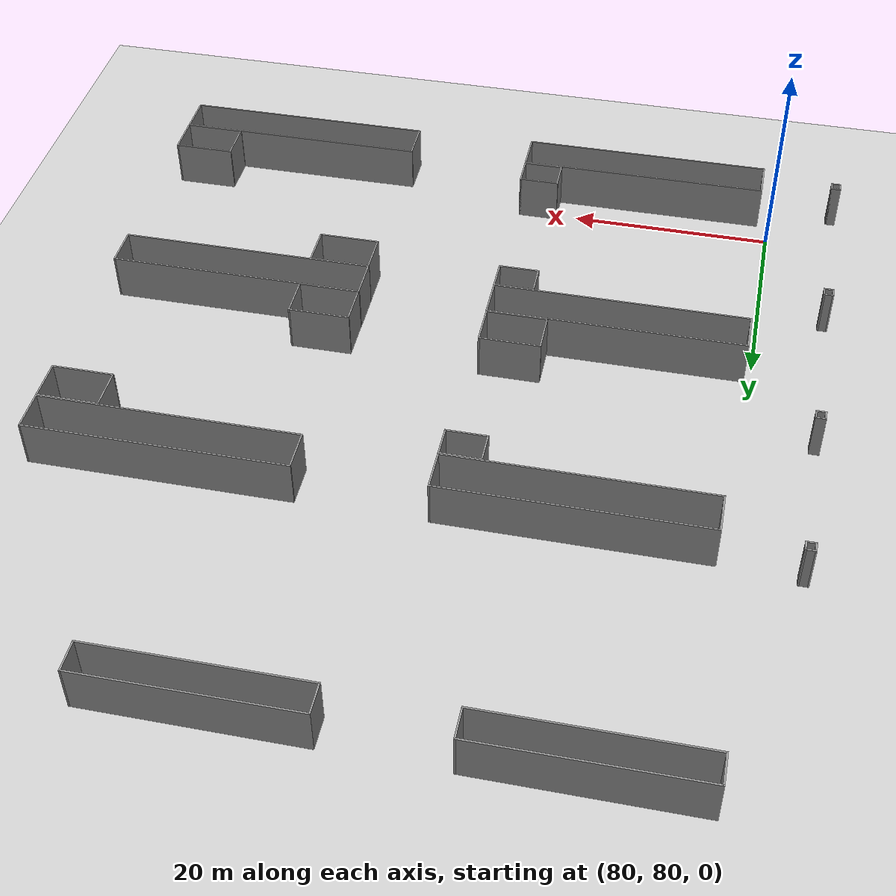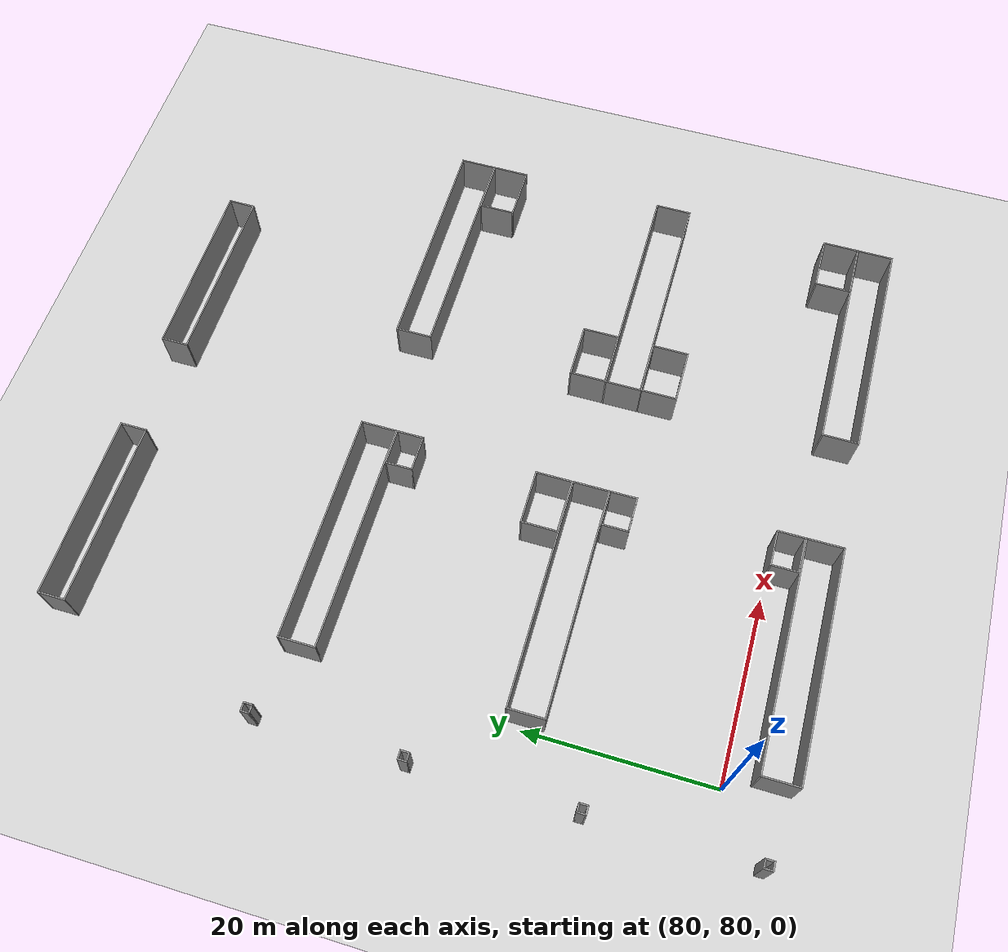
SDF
<sdf version="1.6">
 <world name="default">
  <model name="ground_plane">
   <static>1</static>
   <link name="link">
    <collision name="collision">
     <geometry><plane><normal>0 0 1</normal><size>320 320</size></plane></geometry>
     <surface>
      <contact><collide_bitmask>65535</collide_bitmask></contact>
      <friction><ode><mu>100</mu><mu2>50</mu2></ode></friction>
     </surface>
    </collision>
    <visual name="visual">
     <cast_shadows>0</cast_shadows>
     <geometry><plane><normal>0 0 1</normal><size>320 320</size></plane></geometry>
     <material>
      <script><uri>file://media/materials/scripts/gazebo.material</uri><name>Gazebo/Grey</name></script>
     </material>
    </visual>
   </link>
  </model>
  <model name="base4x25">
   <pose>130.671 123.217 0 0 -0 0</pose>
   <link name="Wall_11">
    <collision name="Wall_11_Collision">
     <geometry><box><size>4 0.15 6.555</size></box></geometry>
     <pose>0 0 1.25 0 -0 0</pose>
    </collision>
    <visual name="Wall_11_Visual">
     <pose>0 0 1.25 0 -0 0</pose>
     <geometry><box><size>4 0.15 6.555</size></box></geometry>
     <material>
      <script><uri>file://media/materials/scripts/gazebo.material</uri><name>Gazebo/Grey</name></script>
      <ambient>1 1 1 1</ambient>
     </material>
     <meta><layer>0</layer></meta>
    </visual>
    <pose>-12.425 0 0 0 -0 -1.5708</pose>
   </link>
   <link name="Wall_12">
    <collision name="Wall_12_Collision">
     <geometry><box><size>25 0.15 6.555</size></box></geometry>
     <pose>0 0 1.25 0 -0 0</pose>
    </collision>
    <visual name="Wall_12_Visual">
     <pose>0 0 1.25 0 -0 0</pose>
     <geometry><box><size>25 0.15 6.555</size></box></geometry>
     <material>
      <script><uri>file://media/materials/scripts/gazebo.material</uri><name>Gazebo/Grey</name></script>
      <ambient>1 1 1 1</ambient>
     </material>
     <meta><layer>0</layer></meta>
    </visual>
    <pose>0 -1.925 0 0 -0 0</pose>
   </link>
   <link name="Wall_13">
    <collision name="Wall_13_Collision">
     <geometry><box><size>4 0.15 6.555</size></box></geometry>
     <pose>0 0 1.25 0 -0 0</pose>
    </collision>
    <visual name="Wall_13_Visual">
     <pose>0 0 1.25 0 -0 0</pose>
     <geometry><box><size>4 0.15 6.555</size></box></geometry>
     <material>
      <script><uri>file://media/materials/scripts/gazebo.material</uri><name>Gazebo/Grey</name></script>
      <ambient>1 1 1 1</ambient>
     </material>
     <meta><layer>0</layer></meta>
    </visual>
    <pose>12.425 0 0 0 -0 1.5708</pose>
   </link>
   <link name="Wall_14">
    <collision name="Wall_14_Collision">
     <geometry><box><size>25 0.15 6.555</size></box></geometry>
     <pose>0 0 1.25 0 -0 0</pose>
    </collision>
    <visual name="Wall_14_Visual">
     <pose>0 0 1.25 0 -0 0</pose>
     <geometry><box><size>25 0.15 6.555</size></box></geometry>
     <material>
      <script><uri>file://media/materials/scripts/gazebo.material</uri><name>Gazebo/Grey</name></script>
      <ambient>1 1 1 1</ambient>
     </material>
     <meta><layer>0</layer></meta>
    </visual>
    <pose>0 1.925 0 0 -0 3.14159</pose>
   </link>
   <static>1</static>
  </model>
  <model name="base4x25_0">
   <pose>93.5859 123.083 0 0 -0 0</pose>
   <link name="Wall_11">
    <collision name="Wall_11_Collision">
     <geometry><box><size>4 0.15 6.555</size></box></geometry>
     <pose>0 0 1.25 0 -0 0</pose>
    </collision>
    <visual name="Wall_11_Visual">
     <pose>0 0 1.25 0 -0 0</pose>
     <geometry><box><size>4 0.15 6.555</size></box></geometry>
     <material>
      <script><uri>file://media/materials/scripts/gazebo.material</uri><name>Gazebo/Grey</name></script>
      <ambient>1 1 1 1</ambient>
     </material>
     <meta><layer>0</layer></meta>
    </visual>
    <pose>-12.425 0 0 0 -0 -1.5708</pose>
   </link>
   <link name="Wall_12">
    <collision name="Wall_12_Collision">
     <geometry><box><size>25 0.15 6.555</size></box></geometry>
     <pose>0 0 1.25 0 -0 0</pose>
    </collision>
    <visual name="Wall_12_Visual">
     <pose>0 0 1.25 0 -0 0</pose>
     <geometry><box><size>25 0.15 6.555</size></box></geometry>
     <material>
      <script><uri>file://media/materials/scripts/gazebo.material</uri><name>Gazebo/Grey</name></script>
      <ambient>1 1 1 1</ambient>
     </material>
     <meta><layer>0</layer></meta>
    </visual>
    <pose>0 -1.925 0 0 -0 0</pose>
   </link>
   <link name="Wall_13">
    <collision name="Wall_13_Collision">
     <geometry><box><size>4 0.15 6.555</size></box></geometry>
     <pose>0 0 1.25 0 -0 0</pose>
    </collision>
    <visual name="Wall_13_Visual">
     <pose>0 0 1.25 0 -0 0</pose>
     <geometry><box><size>4 0.15 6.555</size></box></geometry>
     <material>
      <script><uri>file://media/materials/scripts/gazebo.material</uri><name>Gazebo/Grey</name></script>
      <ambient>1 1 1 1</ambient>
     </material>
     <meta><layer>0</layer></meta>
    </visual>
    <pose>12.425 0 0 0 -0 1.5708</pose>
   </link>
   <link name="Wall_14">
    <collision name="Wall_14_Collision">
     <geometry><box><size>25 0.15 6.555</size></box></geometry>
     <pose>0 0 1.25 0 -0 0</pose>
    </collision>
    <visual name="Wall_14_Visual">
     <pose>0 0 1.25 0 -0 0</pose>
     <geometry><box><size>25 0.15 6.555</size></box></geometry>
     <material>
      <script><uri>file://media/materials/scripts/gazebo.material</uri><name>Gazebo/Grey</name></script>
      <ambient>1 1 1 1</ambient>
     </material>
     <meta><layer>0</layer></meta>
    </visual>
    <pose>0 1.925 0 0 -0 3.14159</pose>
   </link>
   <static>1</static>
  </model>
  <model name="base4x25_1">
   <pose>130.605 99.4308 0 0 -0 0</pose>
   <link name="Wall_11">
    <collision name="Wall_11_Collision">
     <geometry><box><size>4 0.15 6.555</size></box></geometry>
     <pose>0 0 1.25 0 -0 0</pose>
    </collision>
    <visual name="Wall_11_Visual">
     <pose>0 0 1.25 0 -0 0</pose>
     <geometry><box><size>4 0.15 6.555</size></box></geometry>
     <material>
      <script><uri>file://media/materials/scripts/gazebo.material</uri><name>Gazebo/Grey</name></script>
      <ambient>1 1 1 1</ambient>
     </material>
     <meta><layer>0</layer></meta>
    </visual>
    <pose>-12.425 0 0 0 -0 -1.5708</pose>
   </link>
   <link name="Wall_12">
    <collision name="Wall_12_Collision">
     <geometry><box><size>25 0.15 6.555</size></box></geometry>
     <pose>0 0 1.25 0 -0 0</pose>
    </collision>
    <visual name="Wall_12_Visual">
     <pose>0 0 1.25 0 -0 0</pose>
     <geometry><box><size>25 0.15 6.555</size></box></geometry>
     <material>
      <script><uri>file://media/materials/scripts/gazebo.material</uri><name>Gazebo/Grey</name></script>
      <ambient>1 1 1 1</ambient>
     </material>
     <meta><layer>0</layer></meta>
    </visual>
    <pose>0 -1.925 0 0 -0 0</pose>
   </link>
   <link name="Wall_13">
    <collision name="Wall_13_Collision">
     <geometry><box><size>4 0.15 6.555</size></box></geometry>
     <pose>0 0 1.25 0 -0 0</pose>
    </collision>
    <visual name="Wall_13_Visual">
     <pose>0 0 1.25 0 -0 0</pose>
     <geometry><box><size>4 0.15 6.555</size></box></geometry>
     <material>
      <script><uri>file://media/materials/scripts/gazebo.material</uri><name>Gazebo/Grey</name></script>
      <ambient>1 1 1 1</ambient>
     </material>
     <meta><layer>0</layer></meta>
    </visual>
    <pose>12.425 0 0 0 -0 1.5708</pose>
   </link>
   <link name="Wall_14">
    <collision name="Wall_14_Collision">
     <geometry><box><size>25 0.15 6.555</size></box></geometry>
     <pose>0 0 1.25 0 -0 0</pose>
    </collision>
    <visual name="Wall_14_Visual">
     <pose>0 0 1.25 0 -0 0</pose>
     <geometry><box><size>25 0.15 6.555</size></box></geometry>
     <material>
      <script><uri>file://media/materials/scripts/gazebo.material</uri><name>Gazebo/Grey</name></script>
      <ambient>1 1 1 1</ambient>
     </material>
     <meta><layer>0</layer></meta>
    </visual>
    <pose>0 1.925 0 0 -0 3.14159</pose>
   </link>
   <static>1</static>
  </model>
  <model name="base4x25_2">
   <pose>93.095 99.7335 0 0 -0 0</pose>
   <link name="Wall_11">
    <collision name="Wall_11_Collision">
     <geometry><box><size>4 0.15 6.555</size></box></geometry>
     <pose>0 0 1.25 0 -0 0</pose>
    </collision>
    <visual name="Wall_11_Visual">
     <pose>0 0 1.25 0 -0 0</pose>
     <geometry><box><size>4 0.15 6.555</size></box></geometry>
     <material>
      <script><uri>file://media/materials/scripts/gazebo.material</uri><name>Gazebo/Grey</name></script>
      <ambient>1 1 1 1</ambient>
     </material>
     <meta><layer>0</layer></meta>
    </visual>
    <pose>-12.425 0 0 0 -0 -1.5708</pose>
   </link>
   <link name="Wall_12">
    <collision name="Wall_12_Collision">
     <geometry><box><size>25 0.15 6.555</size></box></geometry>
     <pose>0 0 1.25 0 -0 0</pose>
    </collision>
    <visual name="Wall_12_Visual">
     <pose>0 0 1.25 0 -0 0</pose>
     <geometry><box><size>25 0.15 6.555</size></box></geometry>
     <material>
      <script><uri>file://media/materials/scripts/gazebo.material</uri><name>Gazebo/Grey</name></script>
      <ambient>1 1 1 1</ambient>
     </material>
     <meta><layer>0</layer></meta>
    </visual>
    <pose>0 -1.925 0 0 -0 0</pose>
   </link>
   <link name="Wall_13">
    <collision name="Wall_13_Collision">
     <geometry><box><size>4 0.15 6.555</size></box></geometry>
     <pose>0 0 1.25 0 -0 0</pose>
    </collision>
    <visual name="Wall_13_Visual">
     <pose>0 0 1.25 0 -0 0</pose>
     <geometry><box><size>4 0.15 6.555</size></box></geometry>
     <material>
      <script><uri>file://media/materials/scripts/gazebo.material</uri><name>Gazebo/Grey</name></script>
      <ambient>1 1 1 1</ambient>
     </material>
     <meta><layer>0</layer></meta>
    </visual>
    <pose>12.425 0 0 0 -0 1.5708</pose>
   </link>
   <link name="Wall_14">
    <collision name="Wall_14_Collision">
     <geometry><box><size>25 0.15 6.555</size></box></geometry>
     <pose>0 0 1.25 0 -0 0</pose>
    </collision>
    <visual name="Wall_14_Visual">
     <pose>0 0 1.25 0 -0 0</pose>
     <geometry><box><size>25 0.15 6.555</size></box></geometry>
     <material>
      <script><uri>file://media/materials/scripts/gazebo.material</uri><name>Gazebo/Grey</name></script>
      <ambient>1 1 1 1</ambient>
     </material>
     <meta><layer>0</layer></meta>
    </visual>
    <pose>0 1.925 0 0 -0 3.14159</pose>
   </link>
   <static>1</static>
  </model>
  <model name="base4x25_3">
   <pose>130.754 75.8809 0 0 -0 0</pose>
   <link name="Wall_11">
    <collision name="Wall_11_Collision">
     <geometry><box><size>4 0.15 6.555</size></box></geometry>
     <pose>0 0 1.25 0 -0 0</pose>
    </collision>
    <visual name="Wall_11_Visual">
     <pose>0 0 1.25 0 -0 0</pose>
     <geometry><box><size>4 0.15 6.555</size></box></geometry>
     <material>
      <script><uri>file://media/materials/scripts/gazebo.material</uri><name>Gazebo/Grey</name></script>
      <ambient>1 1 1 1</ambient>
     </material>
     <meta><layer>0</layer></meta>
    </visual>
    <pose>-12.425 0 0 0 -0 -1.5708</pose>
   </link>
   <link name="Wall_12">
    <collision name="Wall_12_Collision">
     <geometry><box><size>25 0.15 6.555</size></box></geometry>
     <pose>0 0 1.25 0 -0 0</pose>
    </collision>
    <visual name="Wall_12_Visual">
     <pose>0 0 1.25 0 -0 0</pose>
     <geometry><box><size>25 0.15 6.555</size></box></geometry>
     <material>
      <script><uri>file://media/materials/scripts/gazebo.material</uri><name>Gazebo/Grey</name></script>
      <ambient>1 1 1 1</ambient>
     </material>
     <meta><layer>0</layer></meta>
    </visual>
    <pose>0 -1.925 0 0 -0 0</pose>
   </link>
   <link name="Wall_13">
    <collision name="Wall_13_Collision">
     <geometry><box><size>4 0.15 6.555</size></box></geometry>
     <pose>0 0 1.25 0 -0 0</pose>
    </collision>
    <visual name="Wall_13_Visual">
     <pose>0 0 1.25 0 -0 0</pose>
     <geometry><box><size>4 0.15 6.555</size></box></geometry>
     <material>
      <script><uri>file://media/materials/scripts/gazebo.material</uri><name>Gazebo/Grey</name></script>
      <ambient>1 1 1 1</ambient>
     </material>
     <meta><layer>0</layer></meta>
    </visual>
    <pose>12.425 0 0 0 -0 1.5708</pose>
   </link>
   <link name="Wall_14">
    <collision name="Wall_14_Collision">
     <geometry><box><size>25 0.15 6.555</size></box></geometry>
     <pose>0 0 1.25 0 -0 0</pose>
    </collision>
    <visual name="Wall_14_Visual">
     <pose>0 0 1.25 0 -0 0</pose>
     <geometry><box><size>25 0.15 6.555</size></box></geometry>
     <material>
      <script><uri>file://media/materials/scripts/gazebo.material</uri><name>Gazebo/Grey</name></script>
      <ambient>1 1 1 1</ambient>
     </material>
     <meta><layer>0</layer></meta>
    </visual>
    <pose>0 1.925 0 0 -0 3.14159</pose>
   </link>
   <static>1</static>
  </model>
  <model name="base4x25_10">
   <pose>93.6086 75.3811 0 0 -0 0</pose>
   <link name="Wall_11">
    <collision name="Wall_11_Collision">
     <geometry><box><size>4 0.15 6.555</size></box></geometry>
     <pose>0 0 1.25 0 -0 0</pose>
    </collision>
    <visual name="Wall_11_Visual">
     <pose>0 0 1.25 0 -0 0</pose>
     <geometry><box><size>4 0.15 6.555</size></box></geometry>
     <material>
      <script><uri>file://media/materials/scripts/gazebo.material</uri><name>Gazebo/Grey</name></script>
      <ambient>1 1 1 1</ambient>
     </material>
     <meta><layer>0</layer></meta>
    </visual>
    <pose>-12.425 0 0 0 -0 -1.5708</pose>
   </link>
   <link name="Wall_12">
    <collision name="Wall_12_Collision">
     <geometry><box><size>25 0.15 6.555</size></box></geometry>
     <pose>0 0 1.25 0 -0 0</pose>
    </collision>
    <visual name="Wall_12_Visual">
     <pose>0 0 1.25 0 -0 0</pose>
     <geometry><box><size>25 0.15 6.555</size></box></geometry>
     <material>
      <script><uri>file://media/materials/scripts/gazebo.material</uri><name>Gazebo/Grey</name></script>
      <ambient>1 1 1 1</ambient>
     </material>
     <meta><layer>0</layer></meta>
    </visual>
    <pose>0 -1.925 0 0 -0 0</pose>
   </link>
   <link name="Wall_13">
    <collision name="Wall_13_Collision">
     <geometry><box><size>4 0.15 6.555</size></box></geometry>
     <pose>0 0 1.25 0 -0 0</pose>
    </collision>
    <visual name="Wall_13_Visual">
     <pose>0 0 1.25 0 -0 0</pose>
     <geometry><box><size>4 0.15 6.555</size></box></geometry>
     <material>
      <script><uri>file://media/materials/scripts/gazebo.material</uri><name>Gazebo/Grey</name></script>
      <ambient>1 1 1 1</ambient>
     </material>
     <meta><layer>0</layer></meta>
    </visual>
    <pose>12.425 0 0 0 -0 1.5708</pose>
   </link>
   <link name="Wall_14">
    <collision name="Wall_14_Collision">
     <geometry><box><size>25 0.15 6.555</size></box></geometry>
     <pose>0 0 1.25 0 -0 0</pose>
    </collision>
    <visual name="Wall_14_Visual">
     <pose>0 0 1.25 0 -0 0</pose>
     <geometry><box><size>25 0.15 6.555</size></box></geometry>
     <material>
      <script><uri>file://media/materials/scripts/gazebo.material</uri><name>Gazebo/Grey</name></script>
      <ambient>1 1 1 1</ambient>
     </material>
     <meta><layer>0</layer></meta>
    </visual>
    <pose>0 1.925 0 0 -0 3.14159</pose>
   </link>
   <static>1</static>
  </model>
  <model name="box_1mx1m_clone">
   <pose>73.7138 125.314 0 0 -0 0</pose>
   <link name="Wall_10">
    <collision name="Wall_10_Collision">
     <geometry><box><size>1 0.15 6.555</size></box></geometry>
     <pose>0 0 1.25 0 -0 0</pose>
    </collision>
    <visual name="Wall_10_Visual">
     <pose>0 0 1.25 0 -0 0</pose>
     <geometry><box><size>1 0.15 6.555</size></box></geometry>
     <material>
      <script><uri>file://media/materials/scripts/gazebo.material</uri><name>Gazebo/Grey</name></script>
      <ambient>1 1 1 1</ambient>
     </material>
     <meta><layer>0</layer></meta>
    </visual>
    <pose>-0.425 0 0 0 -0 -1.5708</pose>
   </link>
   <link name="Wall_11">
    <collision name="Wall_11_Collision">
     <geometry><box><size>1 0.15 6.555</size></box></geometry>
     <pose>0 0 1.25 0 -0 0</pose>
    </collision>
    <visual name="Wall_11_Visual">
     <pose>0 0 1.25 0 -0 0</pose>
     <geometry><box><size>1 0.15 6.555</size></box></geometry>
     <material>
      <script><uri>file://media/materials/scripts/gazebo.material</uri><name>Gazebo/Grey</name></script>
      <ambient>1 1 1 1</ambient>
     </material>
     <meta><layer>0</layer></meta>
    </visual>
    <pose>0 -0.425 0 0 -0 0</pose>
   </link>
   <link name="Wall_12">
    <collision name="Wall_12_Collision">
     <geometry><box><size>1 0.15 6.555</size></box></geometry>
     <pose>0 0 1.25 0 -0 0</pose>
    </collision>
    <visual name="Wall_12_Visual">
     <pose>0 0 1.25 0 -0 0</pose>
     <geometry><box><size>1 0.15 6.555</size></box></geometry>
     <material>
      <script><uri>file://media/materials/scripts/gazebo.material</uri><name>Gazebo/Grey</name></script>
      <ambient>1 1 1 1</ambient>
     </material>
     <meta><layer>0</layer></meta>
    </visual>
    <pose>0.425 0 0 0 -0 1.5708</pose>
   </link>
   <link name="Wall_13">
    <collision name="Wall_13_Collision">
     <geometry><box><size>1 0.15 6.555</size></box></geometry>
     <pose>0 0 1.25 0 -0 0</pose>
    </collision>
    <visual name="Wall_13_Visual">
     <pose>0 0 1.25 0 -0 0</pose>
     <geometry><box><size>1 0.15 6.555</size></box></geometry>
     <material>
      <script><uri>file://media/materials/scripts/gazebo.material</uri><name>Gazebo/Grey</name></script>
      <ambient>1 1 1 1</ambient>
     </material>
     <meta><layer>0</layer></meta>
    </visual>
    <pose>0 0.425 0 0 -0 3.14159</pose>
   </link>
   <static>1</static>
  </model>
  <model name="box_1mx1m_clone_0">
   <pose>73.5984 109.584 0 0 -0 0</pose>
   <link name="Wall_10">
    <collision name="Wall_10_Collision">
     <geometry><box><size>1 0.15 6.555</size></box></geometry>
     <pose>0 0 1.25 0 -0 0</pose>
    </collision>
    <visual name="Wall_10_Visual">
     <pose>0 0 1.25 0 -0 0</pose>
     <geometry><box><size>1 0.15 6.555</size></box></geometry>
     <material>
      <script><uri>file://media/materials/scripts/gazebo.material</uri><name>Gazebo/Grey</name></script>
      <ambient>1 1 1 1</ambient>
     </material>
     <meta><layer>0</layer></meta>
    </visual>
    <pose>-0.425 0 0 0 -0 -1.5708</pose>
   </link>
   <link name="Wall_11">
    <collision name="Wall_11_Collision">
     <geometry><box><size>1 0.15 6.555</size></box></geometry>
     <pose>0 0 1.25 0 -0 0</pose>
    </collision>
    <visual name="Wall_11_Visual">
     <pose>0 0 1.25 0 -0 0</pose>
     <geometry><box><size>1 0.15 6.555</size></box></geometry>
     <material>
      <script><uri>file://media/materials/scripts/gazebo.material</uri><name>Gazebo/Grey</name></script>
      <ambient>1 1 1 1</ambient>
     </material>
     <meta><layer>0</layer></meta>
    </visual>
    <pose>0 -0.425 0 0 -0 0</pose>
   </link>
   <link name="Wall_12">
    <collision name="Wall_12_Collision">
     <geometry><box><size>1 0.15 6.555</size></box></geometry>
     <pose>0 0 1.25 0 -0 0</pose>
    </collision>
    <visual name="Wall_12_Visual">
     <pose>0 0 1.25 0 -0 0</pose>
     <geometry><box><size>1 0.15 6.555</size></box></geometry>
     <material>
      <script><uri>file://media/materials/scripts/gazebo.material</uri><name>Gazebo/Grey</name></script>
      <ambient>1 1 1 1</ambient>
     </material>
     <meta><layer>0</layer></meta>
    </visual>
    <pose>0.425 0 0 0 -0 1.5708</pose>
   </link>
   <link name="Wall_13">
    <collision name="Wall_13_Collision">
     <geometry><box><size>1 0.15 6.555</size></box></geometry>
     <pose>0 0 1.25 0 -0 0</pose>
    </collision>
    <visual name="Wall_13_Visual">
     <pose>0 0 1.25 0 -0 0</pose>
     <geometry><box><size>1 0.15 6.555</size></box></geometry>
     <material>
      <script><uri>file://media/materials/scripts/gazebo.material</uri><name>Gazebo/Grey</name></script>
      <ambient>1 1 1 1</ambient>
     </material>
     <meta><layer>0</layer></meta>
    </visual>
    <pose>0 0.425 0 0 -0 3.14159</pose>
   </link>
   <static>1</static>
  </model>
  <model name="box_1mx1m_clone_1">
   <pose>73.6369 92.3532 0 0 -0 0</pose>
   <link name="Wall_10">
    <collision name="Wall_10_Collision">
     <geometry><box><size>1 0.15 6.555</size></box></geometry>
     <pose>0 0 1.25 0 -0 0</pose>
    </collision>
    <visual name="Wall_10_Visual">
     <pose>0 0 1.25 0 -0 0</pose>
     <geometry><box><size>1 0.15 6.555</size></box></geometry>
     <material>
      <script><uri>file://media/materials/scripts/gazebo.material</uri><name>Gazebo/Grey</name></script>
      <ambient>1 1 1 1</ambient>
     </material>
     <meta><layer>0</layer></meta>
    </visual>
    <pose>-0.425 0 0 0 -0 -1.5708</pose>
   </link>
   <link name="Wall_11">
    <collision name="Wall_11_Collision">
     <geometry><box><size>1 0.15 6.555</size></box></geometry>
     <pose>0 0 1.25 0 -0 0</pose>
    </collision>
    <visual name="Wall_11_Visual">
     <pose>0 0 1.25 0 -0 0</pose>
     <geometry><box><size>1 0.15 6.555</size></box></geometry>
     <material>
      <script><uri>file://media/materials/scripts/gazebo.material</uri><name>Gazebo/Grey</name></script>
      <ambient>1 1 1 1</ambient>
     </material>
     <meta><layer>0</layer></meta>
    </visual>
    <pose>0 -0.425 0 0 -0 0</pose>
   </link>
   <link name="Wall_12">
    <collision name="Wall_12_Collision">
     <geometry><box><size>1 0.15 6.555</size></box></geometry>
     <pose>0 0 1.25 0 -0 0</pose>
    </collision>
    <visual name="Wall_12_Visual">
     <pose>0 0 1.25 0 -0 0</pose>
     <geometry><box><size>1 0.15 6.555</size></box></geometry>
     <material>
      <script><uri>file://media/materials/scripts/gazebo.material</uri><name>Gazebo/Grey</name></script>
      <ambient>1 1 1 1</ambient>
     </material>
     <meta><layer>0</layer></meta>
    </visual>
    <pose>0.425 0 0 0 -0 1.5708</pose>
   </link>
   <link name="Wall_13">
    <collision name="Wall_13_Collision">
     <geometry><box><size>1 0.15 6.555</size></box></geometry>
     <pose>0 0 1.25 0 -0 0</pose>
    </collision>
    <visual name="Wall_13_Visual">
     <pose>0 0 1.25 0 -0 0</pose>
     <geometry><box><size>1 0.15 6.555</size></box></geometry>
     <material>
      <script><uri>file://media/materials/scripts/gazebo.material</uri><name>Gazebo/Grey</name></script>
      <ambient>1 1 1 1</ambient>
     </material>
     <meta><layer>0</layer></meta>
    </visual>
    <pose>0 0.425 0 0 -0 3.14159</pose>
   </link>
   <static>1</static>
  </model>
  <model name="box_1mx1m_clone_2">
   <pose>73.6078 75.0685 0 0 -0 0</pose>
   <link name="Wall_10">
    <collision name="Wall_10_Collision">
     <geometry><box><size>1 0.15 6.555</size></box></geometry>
     <pose>0 0 1.25 0 -0 0</pose>
    </collision>
    <visual name="Wall_10_Visual">
     <pose>0 0 1.25 0 -0 0</pose>
     <geometry><box><size>1 0.15 6.555</size></box></geometry>
     <material>
      <script><uri>file://media/materials/scripts/gazebo.material</uri><name>Gazebo/Grey</name></script>
      <ambient>1 1 1 1</ambient>
     </material>
     <meta><layer>0</layer></meta>
    </visual>
    <pose>-0.425 0 0 0 -0 -1.5708</pose>
   </link>
   <link name="Wall_11">
    <collision name="Wall_11_Collision">
     <geometry><box><size>1 0.15 6.555</size></box></geometry>
     <pose>0 0 1.25 0 -0 0</pose>
    </collision>
    <visual name="Wall_11_Visual">
     <pose>0 0 1.25 0 -0 0</pose>
     <geometry><box><size>1 0.15 6.555</size></box></geometry>
     <material>
      <script><uri>file://media/materials/scripts/gazebo.material</uri><name>Gazebo/Grey</name></script>
      <ambient>1 1 1 1</ambient>
     </material>
     <meta><layer>0</layer></meta>
    </visual>
    <pose>0 -0.425 0 0 -0 0</pose>
   </link>
   <link name="Wall_12">
    <collision name="Wall_12_Collision">
     <geometry><box><size>1 0.15 6.555</size></box></geometry>
     <pose>0 0 1.25 0 -0 0</pose>
    </collision>
    <visual name="Wall_12_Visual">
     <pose>0 0 1.25 0 -0 0</pose>
     <geometry><box><size>1 0.15 6.555</size></box></geometry>
     <material>
      <script><uri>file://media/materials/scripts/gazebo.material</uri><name>Gazebo/Grey</name></script>
      <ambient>1 1 1 1</ambient>
     </material>
     <meta><layer>0</layer></meta>
    </visual>
    <pose>0.425 0 0 0 -0 1.5708</pose>
   </link>
   <link name="Wall_13">
    <collision name="Wall_13_Collision">
     <geometry><box><size>1 0.15 6.555</size></box></geometry>
     <pose>0 0 1.25 0 -0 0</pose>
    </collision>
    <visual name="Wall_13_Visual">
     <pose>0 0 1.25 0 -0 0</pose>
     <geometry><box><size>1 0.15 6.555</size></box></geometry>
     <material>
      <script><uri>file://media/materials/scripts/gazebo.material</uri><name>Gazebo/Grey</name></script>
      <ambient>1 1 1 1</ambient>
     </material>
     <meta><layer>0</layer></meta>
    </visual>
    <pose>0 0.425 0 0 -0 3.14159</pose>
   </link>
   <static>1</static>
  </model>
  <model name="base4x6_13">
   <pose>140.18 119.242 0 0 -0 0</pose>
   <link name="Wall_23">
    <collision name="Wall_23_Collision">
     <geometry><box><size>4 0.15 6.555</size></box></geometry>
     <pose>0 0 1.25 0 -0 0</pose>
    </collision>
    <visual name="Wall_23_Visual">
     <pose>0 0 1.25 0 -0 0</pose>
     <geometry><box><size>4 0.15 6.555</size></box></geometry>
     <material>
      <script><uri>file://media/materials/scripts/gazebo.material</uri><name>Gazebo/Grey</name></script>
      <ambient>1 1 1 1</ambient>
     </material>
     <meta><layer>0</layer></meta>
    </visual>
    <pose>-2.925 0 0 0 -0 -1.5708</pose>
   </link>
   <link name="Wall_24">
    <collision name="Wall_24_Collision">
     <geometry><box><size>6 0.15 6.555</size></box></geometry>
     <pose>0 0 1.25 0 -0 0</pose>
    </collision>
    <visual name="Wall_24_Visual">
     <pose>0 0 1.25 0 -0 0</pose>
     <geometry><box><size>6 0.15 6.555</size></box></geometry>
     <material>
      <script><uri>file://media/materials/scripts/gazebo.material</uri><name>Gazebo/Grey</name></script>
      <ambient>1 1 1 1</ambient>
     </material>
     <meta><layer>0</layer></meta>
    </visual>
    <pose>-0 -1.925 0 0 -0 0</pose>
   </link>
   <link name="Wall_25">
    <collision name="Wall_25_Collision">
     <geometry><box><size>4 0.15 6.555</size></box></geometry>
     <pose>0 0 1.25 0 -0 0</pose>
    </collision>
    <visual name="Wall_25_Visual">
     <pose>0 0 1.25 0 -0 0</pose>
     <geometry><box><size>4 0.15 6.555</size></box></geometry>
     <material>
      <script><uri>file://media/materials/scripts/gazebo.material</uri><name>Gazebo/Grey</name></script>
      <ambient>1 1 1 1</ambient>
     </material>
     <meta><layer>0</layer></meta>
    </visual>
    <pose>2.925 0 0 0 -0 1.5708</pose>
   </link>
   <link name="Wall_26">
    <collision name="Wall_26_Collision">
     <geometry><box><size>6 0.15 6.555</size></box></geometry>
     <pose>0 0 1.25 0 -0 0</pose>
    </collision>
    <visual name="Wall_26_Visual">
     <pose>0 0 1.25 0 -0 0</pose>
     <geometry><box><size>6 0.15 6.555</size></box></geometry>
     <material>
      <script><uri>file://media/materials/scripts/gazebo.material</uri><name>Gazebo/Grey</name></script>
      <ambient>1 1 1 1</ambient>
     </material>
     <meta><layer>0</layer></meta>
    </visual>
    <pose>-0 1.925 0 0 -0 3.14159</pose>
   </link>
   <static>1</static>
  </model>
  <model name="base4x6_13_clone">
   <pose>121.121 95.4913 0 0 -0 0</pose>
   <link name="Wall_23">
    <collision name="Wall_23_Collision">
     <geometry><box><size>4 0.15 6.555</size></box></geometry>
     <pose>0 0 1.25 0 -0 0</pose>
    </collision>
    <visual name="Wall_23_Visual">
     <pose>0 0 1.25 0 -0 0</pose>
     <geometry><box><size>4 0.15 6.555</size></box></geometry>
     <material>
      <script><uri>file://media/materials/scripts/gazebo.material</uri><name>Gazebo/Grey</name></script>
      <ambient>1 1 1 1</ambient>
     </material>
     <meta><layer>0</layer></meta>
    </visual>
    <pose>-2.925 0 0 0 -0 -1.5708</pose>
   </link>
   <link name="Wall_24">
    <collision name="Wall_24_Collision">
     <geometry><box><size>6 0.15 6.555</size></box></geometry>
     <pose>0 0 1.25 0 -0 0</pose>
    </collision>
    <visual name="Wall_24_Visual">
     <pose>0 0 1.25 0 -0 0</pose>
     <geometry><box><size>6 0.15 6.555</size></box></geometry>
     <material>
      <script><uri>file://media/materials/scripts/gazebo.material</uri><name>Gazebo/Grey</name></script>
      <ambient>1 1 1 1</ambient>
     </material>
     <meta><layer>0</layer></meta>
    </visual>
    <pose>-0 -1.925 0 0 -0 0</pose>
   </link>
   <link name="Wall_25">
    <collision name="Wall_25_Collision">
     <geometry><box><size>4 0.15 6.555</size></box></geometry>
     <pose>0 0 1.25 0 -0 0</pose>
    </collision>
    <visual name="Wall_25_Visual">
     <pose>0 0 1.25 0 -0 0</pose>
     <geometry><box><size>4 0.15 6.555</size></box></geometry>
     <material>
      <script><uri>file://media/materials/scripts/gazebo.material</uri><name>Gazebo/Grey</name></script>
      <ambient>1 1 1 1</ambient>
     </material>
     <meta><layer>0</layer></meta>
    </visual>
    <pose>2.925 0 0 0 -0 1.5708</pose>
   </link>
   <link name="Wall_26">
    <collision name="Wall_26_Collision">
     <geometry><box><size>6 0.15 6.555</size></box></geometry>
     <pose>0 0 1.25 0 -0 0</pose>
    </collision>
    <visual name="Wall_26_Visual">
     <pose>0 0 1.25 0 -0 0</pose>
     <geometry><box><size>6 0.15 6.555</size></box></geometry>
     <material>
      <script><uri>file://media/materials/scripts/gazebo.material</uri><name>Gazebo/Grey</name></script>
      <ambient>1 1 1 1</ambient>
     </material>
     <meta><layer>0</layer></meta>
    </visual>
    <pose>-0 1.925 0 0 -0 3.14159</pose>
   </link>
   <static>1</static>
  </model>
  <model name="base4x6_13_clone_14">
   <pose>140.26 79.7916 0 0 -0 0</pose>
   <link name="Wall_23">
    <collision name="Wall_23_Collision">
     <geometry><box><size>4 0.15 6.555</size></box></geometry>
     <pose>0 0 1.25 0 -0 0</pose>
    </collision>
    <visual name="Wall_23_Visual">
     <pose>0 0 1.25 0 -0 0</pose>
     <geometry><box><size>4 0.15 6.555</size></box></geometry>
     <material>
      <script><uri>file://media/materials/scripts/gazebo.material</uri><name>Gazebo/Grey</name></script>
      <ambient>1 1 1 1</ambient>
     </material>
     <meta><layer>0</layer></meta>
    </visual>
    <pose>-2.925 0 0 0 -0 -1.5708</pose>
   </link>
   <link name="Wall_24">
    <collision name="Wall_24_Collision">
     <geometry><box><size>6 0.15 6.555</size></box></geometry>
     <pose>0 0 1.25 0 -0 0</pose>
    </collision>
    <visual name="Wall_24_Visual">
     <pose>0 0 1.25 0 -0 0</pose>
     <geometry><box><size>6 0.15 6.555</size></box></geometry>
     <material>
      <script><uri>file://media/materials/scripts/gazebo.material</uri><name>Gazebo/Grey</name></script>
      <ambient>1 1 1 1</ambient>
     </material>
     <meta><layer>0</layer></meta>
    </visual>
    <pose>-0 -1.925 0 0 -0 0</pose>
   </link>
   <link name="Wall_25">
    <collision name="Wall_25_Collision">
     <geometry><box><size>4 0.15 6.555</size></box></geometry>
     <pose>0 0 1.25 0 -0 0</pose>
    </collision>
    <visual name="Wall_25_Visual">
     <pose>0 0 1.25 0 -0 0</pose>
     <geometry><box><size>4 0.15 6.555</size></box></geometry>
     <material>
      <script><uri>file://media/materials/scripts/gazebo.material</uri><name>Gazebo/Grey</name></script>
      <ambient>1 1 1 1</ambient>
     </material>
     <meta><layer>0</layer></meta>
    </visual>
    <pose>2.925 0 0 0 -0 1.5708</pose>
   </link>
   <link name="Wall_26">
    <collision name="Wall_26_Collision">
     <geometry><box><size>6 0.15 6.555</size></box></geometry>
     <pose>0 0 1.25 0 -0 0</pose>
    </collision>
    <visual name="Wall_26_Visual">
     <pose>0 0 1.25 0 -0 0</pose>
     <geometry><box><size>6 0.15 6.555</size></box></geometry>
     <material>
      <script><uri>file://media/materials/scripts/gazebo.material</uri><name>Gazebo/Grey</name></script>
      <ambient>1 1 1 1</ambient>
     </material>
     <meta><layer>0</layer></meta>
    </visual>
    <pose>-0 1.925 0 0 -0 3.14159</pose>
   </link>
   <static>1</static>
  </model>
  <model name="base4x6_13_clone_15">
   <pose>121.122 103.358 0 0 -0 0</pose>
   <link name="Wall_23">
    <collision name="Wall_23_Collision">
     <geometry><box><size>4 0.15 6.555</size></box></geometry>
     <pose>0 0 1.25 0 -0 0</pose>
    </collision>
    <visual name="Wall_23_Visual">
     <pose>0 0 1.25 0 -0 0</pose>
     <geometry><box><size>4 0.15 6.555</size></box></geometry>
     <material>
      <script><uri>file://media/materials/scripts/gazebo.material</uri><name>Gazebo/Grey</name></script>
      <ambient>1 1 1 1</ambient>
     </material>
     <meta><layer>0</layer></meta>
    </visual>
    <pose>-2.925 0 0 0 -0 -1.5708</pose>
   </link>
   <link name="Wall_24">
    <collision name="Wall_24_Collision">
     <geometry><box><size>6 0.15 6.555</size></box></geometry>
     <pose>0 0 1.25 0 -0 0</pose>
    </collision>
    <visual name="Wall_24_Visual">
     <pose>0 0 1.25 0 -0 0</pose>
     <geometry><box><size>6 0.15 6.555</size></box></geometry>
     <material>
      <script><uri>file://media/materials/scripts/gazebo.material</uri><name>Gazebo/Grey</name></script>
      <ambient>1 1 1 1</ambient>
     </material>
     <meta><layer>0</layer></meta>
    </visual>
    <pose>-0 -1.925 0 0 -0 0</pose>
   </link>
   <link name="Wall_25">
    <collision name="Wall_25_Collision">
     <geometry><box><size>4 0.15 6.555</size></box></geometry>
     <pose>0 0 1.25 0 -0 0</pose>
    </collision>
    <visual name="Wall_25_Visual">
     <pose>0 0 1.25 0 -0 0</pose>
     <geometry><box><size>4 0.15 6.555</size></box></geometry>
     <material>
      <script><uri>file://media/materials/scripts/gazebo.material</uri><name>Gazebo/Grey</name></script>
      <ambient>1 1 1 1</ambient>
     </material>
     <meta><layer>0</layer></meta>
    </visual>
    <pose>2.925 0 0 0 -0 1.5708</pose>
   </link>
   <link name="Wall_26">
    <collision name="Wall_26_Collision">
     <geometry><box><size>6 0.15 6.555</size></box></geometry>
     <pose>0 0 1.25 0 -0 0</pose>
    </collision>
    <visual name="Wall_26_Visual">
     <pose>0 0 1.25 0 -0 0</pose>
     <geometry><box><size>6 0.15 6.555</size></box></geometry>
     <material>
      <script><uri>file://media/materials/scripts/gazebo.material</uri><name>Gazebo/Grey</name></script>
      <ambient>1 1 1 1</ambient>
     </material>
     <meta><layer>0</layer></meta>
    </visual>
    <pose>-0 1.925 0 0 -0 3.14159</pose>
   </link>
   <static>1</static>
  </model>
  <model name="base3x4_3">
   <pose>104.089 119.603 0 0 -0 0</pose>
   <link name="Wall_18">
    <collision name="Wall_18_Collision">
     <geometry><box><size>3 0.15 6.555</size></box></geometry>
     <pose>0 0 1.25 0 -0 0</pose>
    </collision>
    <visual name="Wall_18_Visual">
     <pose>0 0 1.25 0 -0 0</pose>
     <geometry><box><size>3 0.15 6.555</size></box></geometry>
     <material>
      <script><uri>file://media/materials/scripts/gazebo.material</uri><name>Gazebo/Grey</name></script>
      <ambient>1 1 1 1</ambient>
     </material>
     <meta><layer>0</layer></meta>
    </visual>
    <pose>-1.925 -0 0 0 -0 -1.5708</pose>
   </link>
   <link name="Wall_19">
    <collision name="Wall_19_Collision">
     <geometry><box><size>4 0.15 6.555</size></box></geometry>
     <pose>0 0 1.25 0 -0 0</pose>
    </collision>
    <visual name="Wall_19_Visual">
     <pose>0 0 1.25 0 -0 0</pose>
     <geometry><box><size>4 0.15 6.555</size></box></geometry>
     <material>
      <script><uri>file://media/materials/scripts/gazebo.material</uri><name>Gazebo/Grey</name></script>
      <ambient>1 1 1 1</ambient>
     </material>
     <meta><layer>0</layer></meta>
    </visual>
    <pose>-0 -1.425 0 0 -0 0</pose>
   </link>
   <link name="Wall_20">
    <collision name="Wall_20_Collision">
     <geometry><box><size>3 0.15 6.555</size></box></geometry>
     <pose>0 0 1.25 0 -0 0</pose>
    </collision>
    <visual name="Wall_20_Visual">
     <pose>0 0 1.25 0 -0 0</pose>
     <geometry><box><size>3 0.15 6.555</size></box></geometry>
     <material>
      <script><uri>file://media/materials/scripts/gazebo.material</uri><name>Gazebo/Grey</name></script>
      <ambient>1 1 1 1</ambient>
     </material>
     <meta><layer>0</layer></meta>
    </visual>
    <pose>1.925 -0 0 0 -0 1.5708</pose>
   </link>
   <link name="Wall_21">
    <collision name="Wall_21_Collision">
     <geometry><box><size>4 0.15 6.555</size></box></geometry>
     <pose>0 0 1.25 0 -0 0</pose>
    </collision>
    <visual name="Wall_21_Visual">
     <pose>0 0 1.25 0 -0 0</pose>
     <geometry><box><size>4 0.15 6.555</size></box></geometry>
     <material>
      <script><uri>file://media/materials/scripts/gazebo.material</uri><name>Gazebo/Grey</name></script>
      <ambient>1 1 1 1</ambient>
     </material>
     <meta><layer>0</layer></meta>
    </visual>
    <pose>-0 1.425 0 0 -0 3.14159</pose>
   </link>
   <static>1</static>
  </model>
  <model name="base4x6_13_clone_16">
   <pose>102.569 103.704 0 0 -0 0</pose>
   <link name="Wall_23">
    <collision name="Wall_23_Collision">
     <geometry><box><size>4 0.15 6.555</size></box></geometry>
     <pose>0 0 1.25 0 -0 0</pose>
    </collision>
    <visual name="Wall_23_Visual">
     <pose>0 0 1.25 0 -0 0</pose>
     <geometry><box><size>4 0.15 6.555</size></box></geometry>
     <material>
      <script><uri>file://media/materials/scripts/gazebo.material</uri><name>Gazebo/Grey</name></script>
      <ambient>1 1 1 1</ambient>
     </material>
     <meta><layer>0</layer></meta>
    </visual>
    <pose>-2.925 0 0 0 -0 -1.5708</pose>
   </link>
   <link name="Wall_24">
    <collision name="Wall_24_Collision">
     <geometry><box><size>6 0.15 6.555</size></box></geometry>
     <pose>0 0 1.25 0 -0 0</pose>
    </collision>
    <visual name="Wall_24_Visual">
     <pose>0 0 1.25 0 -0 0</pose>
     <geometry><box><size>6 0.15 6.555</size></box></geometry>
     <material>
      <script><uri>file://media/materials/scripts/gazebo.material</uri><name>Gazebo/Grey</name></script>
      <ambient>1 1 1 1</ambient>
     </material>
     <meta><layer>0</layer></meta>
    </visual>
    <pose>-0 -1.925 0 0 -0 0</pose>
   </link>
   <link name="Wall_25">
    <collision name="Wall_25_Collision">
     <geometry><box><size>4 0.15 6.555</size></box></geometry>
     <pose>0 0 1.25 0 -0 0</pose>
    </collision>
    <visual name="Wall_25_Visual">
     <pose>0 0 1.25 0 -0 0</pose>
     <geometry><box><size>4 0.15 6.555</size></box></geometry>
     <material>
      <script><uri>file://media/materials/scripts/gazebo.material</uri><name>Gazebo/Grey</name></script>
      <ambient>1 1 1 1</ambient>
     </material>
     <meta><layer>0</layer></meta>
    </visual>
    <pose>2.925 0 0 0 -0 1.5708</pose>
   </link>
   <link name="Wall_26">
    <collision name="Wall_26_Collision">
     <geometry><box><size>6 0.15 6.555</size></box></geometry>
     <pose>0 0 1.25 0 -0 0</pose>
    </collision>
    <visual name="Wall_26_Visual">
     <pose>0 0 1.25 0 -0 0</pose>
     <geometry><box><size>6 0.15 6.555</size></box></geometry>
     <material>
      <script><uri>file://media/materials/scripts/gazebo.material</uri><name>Gazebo/Grey</name></script>
      <ambient>1 1 1 1</ambient>
     </material>
     <meta><layer>0</layer></meta>
    </visual>
    <pose>-0 1.925 0 0 -0 3.14159</pose>
   </link>
   <static>1</static>
  </model>
  <model name="base3x4_3_clone">
   <pose>103.6 96.2744 0 0 -0 0</pose>
   <link name="Wall_18">
    <collision name="Wall_18_Collision">
     <geometry><box><size>3 0.15 6.555</size></box></geometry>
     <pose>0 0 1.25 0 -0 0</pose>
    </collision>
    <visual name="Wall_18_Visual">
     <pose>0 0 1.25 0 -0 0</pose>
     <geometry><box><size>3 0.15 6.555</size></box></geometry>
     <material>
      <script><uri>file://media/materials/scripts/gazebo.material</uri><name>Gazebo/Grey</name></script>
      <ambient>1 1 1 1</ambient>
     </material>
     <meta><layer>0</layer></meta>
    </visual>
    <pose>-1.925 -0 0 0 -0 -1.5708</pose>
   </link>
   <link name="Wall_19">
    <collision name="Wall_19_Collision">
     <geometry><box><size>4 0.15 6.555</size></box></geometry>
     <pose>0 0 1.25 0 -0 0</pose>
    </collision>
    <visual name="Wall_19_Visual">
     <pose>0 0 1.25 0 -0 0</pose>
     <geometry><box><size>4 0.15 6.555</size></box></geometry>
     <material>
      <script><uri>file://media/materials/scripts/gazebo.material</uri><name>Gazebo/Grey</name></script>
      <ambient>1 1 1 1</ambient>
     </material>
     <meta><layer>0</layer></meta>
    </visual>
    <pose>-0 -1.425 0 0 -0 0</pose>
   </link>
   <link name="Wall_20">
    <collision name="Wall_20_Collision">
     <geometry><box><size>3 0.15 6.555</size></box></geometry>
     <pose>0 0 1.25 0 -0 0</pose>
    </collision>
    <visual name="Wall_20_Visual">
     <pose>0 0 1.25 0 -0 0</pose>
     <geometry><box><size>3 0.15 6.555</size></box></geometry>
     <material>
      <script><uri>file://media/materials/scripts/gazebo.material</uri><name>Gazebo/Grey</name></script>
      <ambient>1 1 1 1</ambient>
     </material>
     <meta><layer>0</layer></meta>
    </visual>
    <pose>1.925 -0 0 0 -0 1.5708</pose>
   </link>
   <link name="Wall_21">
    <collision name="Wall_21_Collision">
     <geometry><box><size>4 0.15 6.555</size></box></geometry>
     <pose>0 0 1.25 0 -0 0</pose>
    </collision>
    <visual name="Wall_21_Visual">
     <pose>0 0 1.25 0 -0 0</pose>
     <geometry><box><size>4 0.15 6.555</size></box></geometry>
     <material>
      <script><uri>file://media/materials/scripts/gazebo.material</uri><name>Gazebo/Grey</name></script>
      <ambient>1 1 1 1</ambient>
     </material>
     <meta><layer>0</layer></meta>
    </visual>
    <pose>-0 1.425 0 0 -0 3.14159</pose>
   </link>
   <static>1</static>
  </model>
  <model name="base3x4_3_clone_0">
   <pose>104.098 78.8838 0 0 -0 0</pose>
   <link name="Wall_18">
    <collision name="Wall_18_Collision">
     <geometry><box><size>3 0.15 6.555</size></box></geometry>
     <pose>0 0 1.25 0 -0 0</pose>
    </collision>
    <visual name="Wall_18_Visual">
     <pose>0 0 1.25 0 -0 0</pose>
     <geometry><box><size>3 0.15 6.555</size></box></geometry>
     <material>
      <script><uri>file://media/materials/scripts/gazebo.material</uri><name>Gazebo/Grey</name></script>
      <ambient>1 1 1 1</ambient>
     </material>
     <meta><layer>0</layer></meta>
    </visual>
    <pose>-1.925 -0 0 0 -0 -1.5708</pose>
   </link>
   <link name="Wall_19">
    <collision name="Wall_19_Collision">
     <geometry><box><size>4 0.15 6.555</size></box></geometry>
     <pose>0 0 1.25 0 -0 0</pose>
    </collision>
    <visual name="Wall_19_Visual">
     <pose>0 0 1.25 0 -0 0</pose>
     <geometry><box><size>4 0.15 6.555</size></box></geometry>
     <material>
      <script><uri>file://media/materials/scripts/gazebo.material</uri><name>Gazebo/Grey</name></script>
      <ambient>1 1 1 1</ambient>
     </material>
     <meta><layer>0</layer></meta>
    </visual>
    <pose>-0 -1.425 0 0 -0 0</pose>
   </link>
   <link name="Wall_20">
    <collision name="Wall_20_Collision">
     <geometry><box><size>3 0.15 6.555</size></box></geometry>
     <pose>0 0 1.25 0 -0 0</pose>
    </collision>
    <visual name="Wall_20_Visual">
     <pose>0 0 1.25 0 -0 0</pose>
     <geometry><box><size>3 0.15 6.555</size></box></geometry>
     <material>
      <script><uri>file://media/materials/scripts/gazebo.material</uri><name>Gazebo/Grey</name></script>
      <ambient>1 1 1 1</ambient>
     </material>
     <meta><layer>0</layer></meta>
    </visual>
    <pose>1.925 -0 0 0 -0 1.5708</pose>
   </link>
   <link name="Wall_21">
    <collision name="Wall_21_Collision">
     <geometry><box><size>4 0.15 6.555</size></box></geometry>
     <pose>0 0 1.25 0 -0 0</pose>
    </collision>
    <visual name="Wall_21_Visual">
     <pose>0 0 1.25 0 -0 0</pose>
     <geometry><box><size>4 0.15 6.555</size></box></geometry>
     <material>
      <script><uri>file://media/materials/scripts/gazebo.material</uri><name>Gazebo/Grey</name></script>
      <ambient>1 1 1 1</ambient>
     </material>
     <meta><layer>0</layer></meta>
    </visual>
    <pose>-0 1.425 0 0 -0 3.14159</pose>
   </link>
   <static>1</static>
  </model>
  <model name="base3x20_1">
   <pose>119.635 148.104 0 0 -0 0</pose>
   <link name="Wall_16">
    <collision name="Wall_16_Collision">
     <geometry><box><size>3 0.15 6.555</size></box></geometry>
     <pose>0 0 1.25 0 -0 0</pose>
    </collision>
    <visual name="Wall_16_Visual">
     <pose>0 0 1.25 0 -0 0</pose>
     <geometry><box><size>3 0.15 6.555</size></box></geometry>
     <material>
      <script><uri>file://media/materials/scripts/gazebo.material</uri><name>Gazebo/Grey</name></script>
      <ambient>1 1 1 1</ambient>
     </material>
     <meta><layer>0</layer></meta>
    </visual>
    <pose>-9.925 -0 0 0 -0 -1.5708</pose>
   </link>
   <link name="Wall_17">
    <collision name="Wall_17_Collision">
     <geometry><box><size>20 0.15 6.555</size></box></geometry>
     <pose>0 0 1.25 0 -0 0</pose>
    </collision>
    <visual name="Wall_17_Visual">
     <pose>0 0 1.25 0 -0 0</pose>
     <geometry><box><size>20 0.15 6.555</size></box></geometry>
     <material>
      <script><uri>file://media/materials/scripts/gazebo.material</uri><name>Gazebo/Grey</name></script>
      <ambient>1 1 1 1</ambient>
     </material>
     <meta><layer>0</layer></meta>
    </visual>
    <pose>-0 -1.425 0 0 -0 0</pose>
   </link>
   <link name="Wall_18">
    <collision name="Wall_18_Collision">
     <geometry><box><size>3 0.15 6.555</size></box></geometry>
     <pose>0 0 1.25 0 -0 0</pose>
    </collision>
    <visual name="Wall_18_Visual">
     <pose>0 0 1.25 0 -0 0</pose>
     <geometry><box><size>3 0.15 6.555</size></box></geometry>
     <material>
      <script><uri>file://media/materials/scripts/gazebo.material</uri><name>Gazebo/Grey</name></script>
      <ambient>1 1 1 1</ambient>
     </material>
     <meta><layer>0</layer></meta>
    </visual>
    <pose>9.925 -0 0 0 -0 1.5708</pose>
   </link>
   <link name="Wall_19">
    <collision name="Wall_19_Collision">
     <geometry><box><size>20 0.15 6.555</size></box></geometry>
     <pose>0 0 1.25 0 -0 0</pose>
    </collision>
    <visual name="Wall_19_Visual">
     <pose>0 0 1.25 0 -0 0</pose>
     <geometry><box><size>20 0.15 6.555</size></box></geometry>
     <material>
      <script><uri>file://media/materials/scripts/gazebo.material</uri><name>Gazebo/Grey</name></script>
      <ambient>1 1 1 1</ambient>
     </material>
     <meta><layer>0</layer></meta>
    </visual>
    <pose>-0 1.425 0 0 -0 3.14159</pose>
   </link>
   <static>1</static>
  </model>
  <model name="base3x20_1_clone">
   <pose>88.6838 148.062 0 0 -0 0</pose>
   <link name="Wall_16">
    <collision name="Wall_16_Collision">
     <geometry><box><size>3 0.15 6.555</size></box></geometry>
     <pose>0 0 1.25 0 -0 0</pose>
    </collision>
    <visual name="Wall_16_Visual">
     <pose>0 0 1.25 0 -0 0</pose>
     <geometry><box><size>3 0.15 6.555</size></box></geometry>
     <material>
      <script><uri>file://media/materials/scripts/gazebo.material</uri><name>Gazebo/Grey</name></script>
      <ambient>1 1 1 1</ambient>
     </material>
     <meta><layer>0</layer></meta>
    </visual>
    <pose>-9.925 -0 0 0 -0 -1.5708</pose>
   </link>
   <link name="Wall_17">
    <collision name="Wall_17_Collision">
     <geometry><box><size>20 0.15 6.555</size></box></geometry>
     <pose>0 0 1.25 0 -0 0</pose>
    </collision>
    <visual name="Wall_17_Visual">
     <pose>0 0 1.25 0 -0 0</pose>
     <geometry><box><size>20 0.15 6.555</size></box></geometry>
     <material>
      <script><uri>file://media/materials/scripts/gazebo.material</uri><name>Gazebo/Grey</name></script>
      <ambient>1 1 1 1</ambient>
     </material>
     <meta><layer>0</layer></meta>
    </visual>
    <pose>-0 -1.425 0 0 -0 0</pose>
   </link>
   <link name="Wall_18">
    <collision name="Wall_18_Collision">
     <geometry><box><size>3 0.15 6.555</size></box></geometry>
     <pose>0 0 1.25 0 -0 0</pose>
    </collision>
    <visual name="Wall_18_Visual">
     <pose>0 0 1.25 0 -0 0</pose>
     <geometry><box><size>3 0.15 6.555</size></box></geometry>
     <material>
      <script><uri>file://media/materials/scripts/gazebo.material</uri><name>Gazebo/Grey</name></script>
      <ambient>1 1 1 1</ambient>
     </material>
     <meta><layer>0</layer></meta>
    </visual>
    <pose>9.925 -0 0 0 -0 1.5708</pose>
   </link>
   <link name="Wall_19">
    <collision name="Wall_19_Collision">
     <geometry><box><size>20 0.15 6.555</size></box></geometry>
     <pose>0 0 1.25 0 -0 0</pose>
    </collision>
    <visual name="Wall_19_Visual">
     <pose>0 0 1.25 0 -0 0</pose>
     <geometry><box><size>20 0.15 6.555</size></box></geometry>
     <material>
      <script><uri>file://media/materials/scripts/gazebo.material</uri><name>Gazebo/Grey</name></script>
      <ambient>1 1 1 1</ambient>
     </material>
     <meta><layer>0</layer></meta>
    </visual>
    <pose>-0 1.425 0 0 -0 3.14159</pose>
   </link>
   <static>1</static>
  </model>
 </world>
</sdf>
